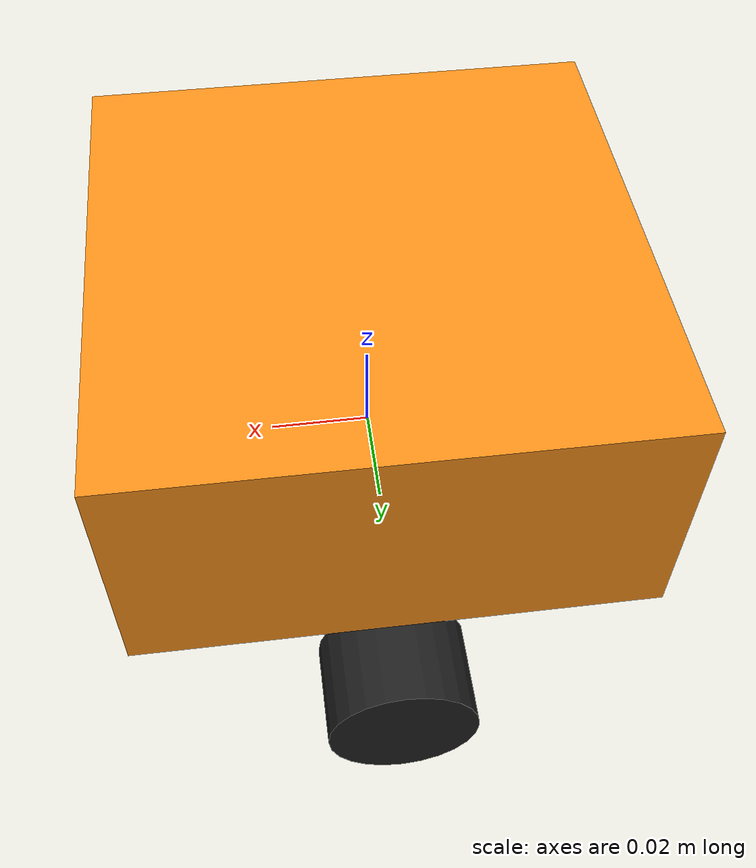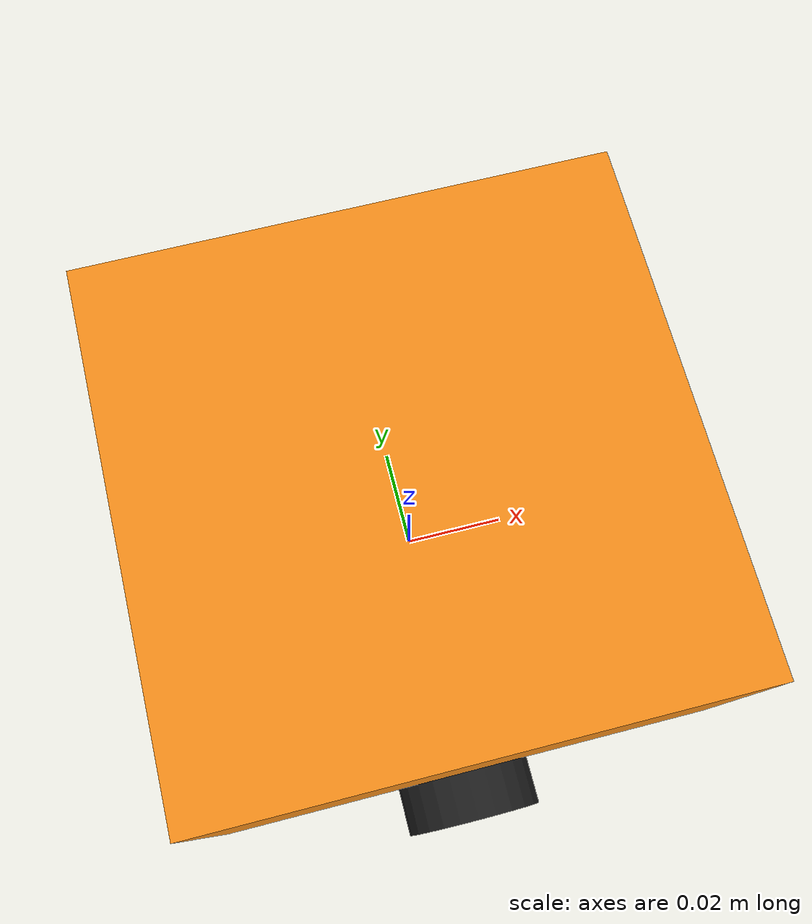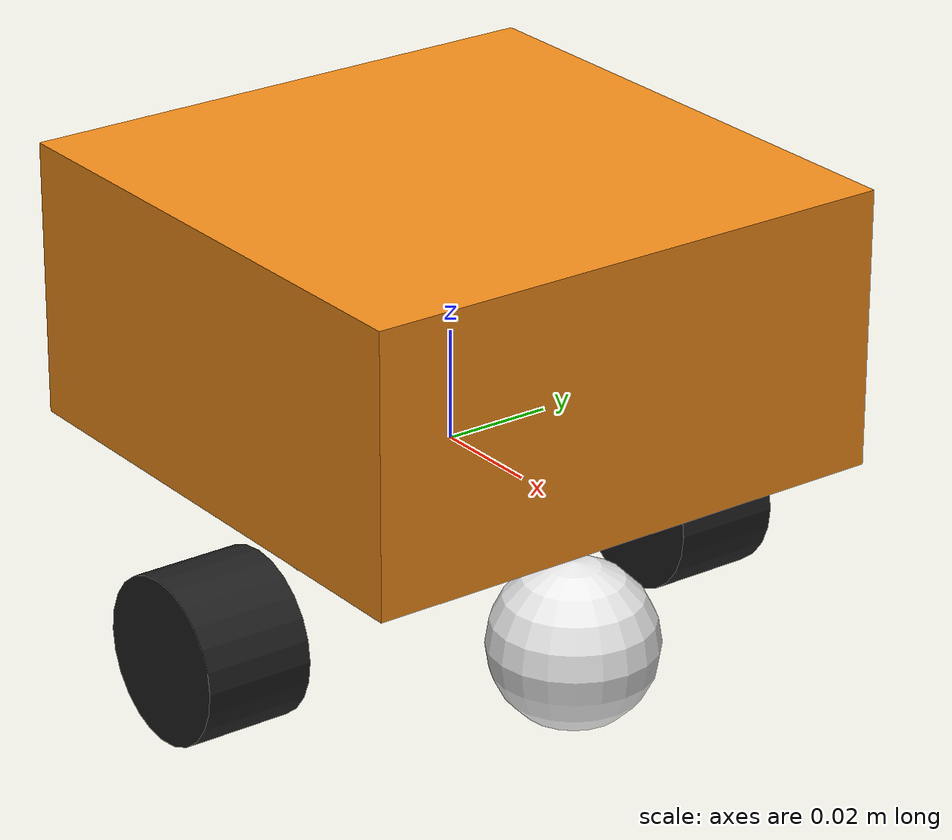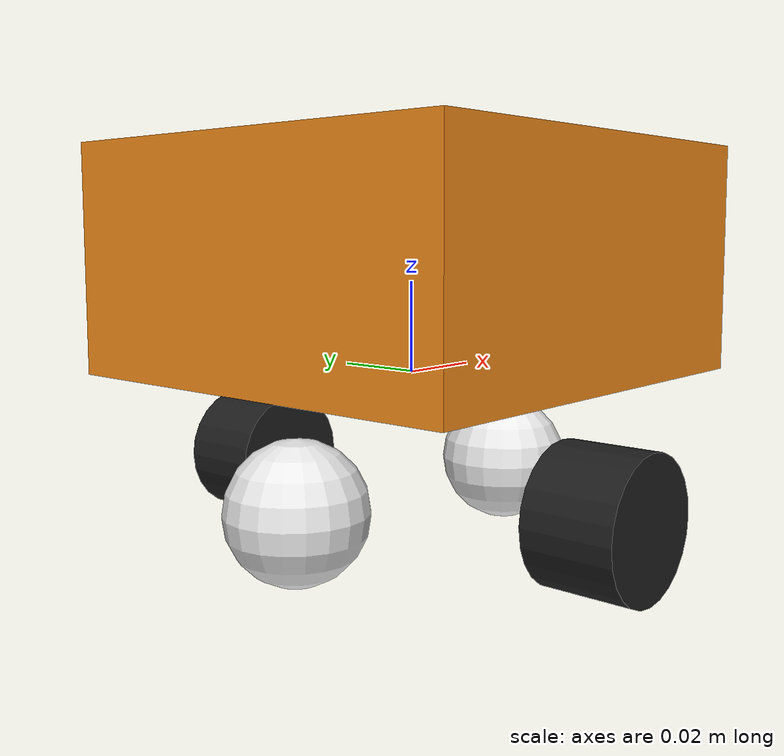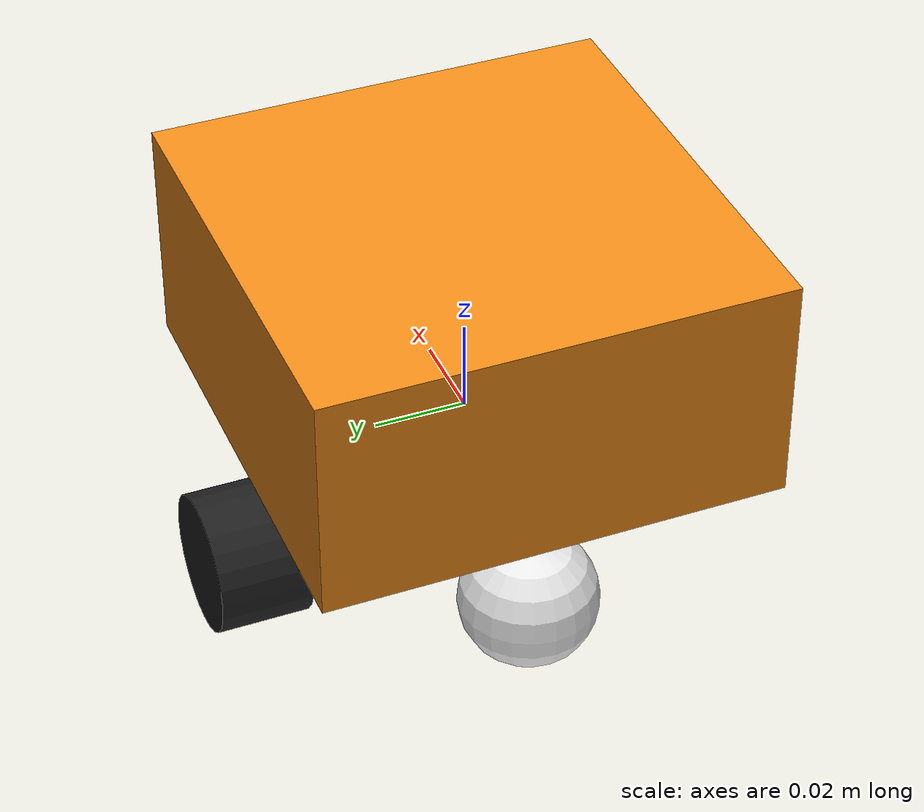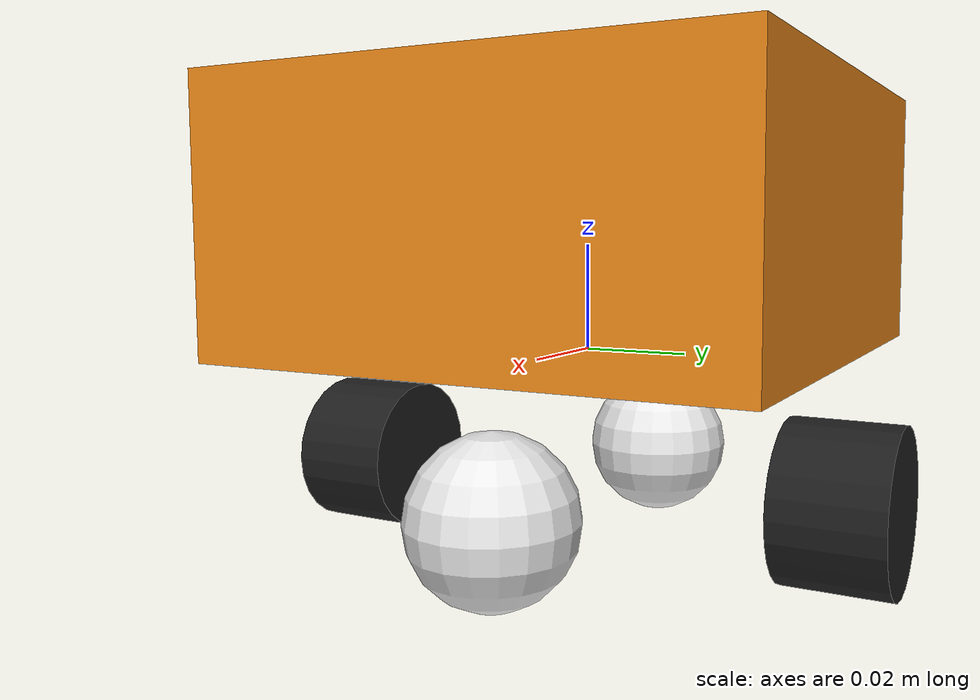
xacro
<?xml version="1.0"?>
<!-- Basic differential drive mobile base -->
<robot xmlns:xacro="http://www.ros.org/wiki/xacro" name="diffdrive_robot">
  <xacro:arg name="prefix" default="" />
  <xacro:arg name="use_mock_hardware" default="false" />

  <xacro:include filename="$(find water_bot_description)/diffbot/urdf/diffbot_description.urdf.xacro" />

  <!-- Import Rviz colors -->
  <xacro:include filename="$(find water_bot_description)/diffbot/urdf/diffbot.materials.xacro" />

  <!-- Import diffbot ros2_control description -->
  <xacro:include filename="$(find water_bot_control)/ros2_control/diffbot.ros2_control.xacro" />

  <xacro:diffbot prefix="$(arg prefix)" />

  <xacro:diffbot_ros2_control
    name="DiffBot" prefix="$(arg prefix)" use_mock_hardware="$(arg use_mock_hardware)"/>

</robot>

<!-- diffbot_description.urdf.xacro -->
<robot xmlns:xacro="http://www.ros.org/wiki/xacro">

  <xacro:macro name="diffbot" params="prefix">

  <!-- Constants for robot dimensions -->
  <xacro:property name="PI" value="3.1415926535897931"/>
  <xacro:property name="base_mass" value="0.3" /> <!-- arbitrary value for base mass -->
  <xacro:property name="base_width" value="0.1" />
  <xacro:property name="base_length" value="0.1" />
  <xacro:property name="base_height" value="0.05" />
  <xacro:property name="wheel_mass" value="0.3" /> <!-- arbitrary value for wheel mass -->
  <xacro:property name="wheel_len" value="0.020" />
  <xacro:property name="wheel_radius" value="0.015" />
  <xacro:property name="caster_wheel_mass" value="0.1" /> <!-- arbitrary value for caster wheel mass -->
  <xacro:property name="caster_wheel_radius" value="0.015" />
  <xacro:property name="lidar_mass" value="0.05" /> <!-- arbitrary value for lidar mass -->
  <xacro:property name="lidar_radius" value="0.025" />
  <xacro:property name="lidar_height" value="0.02" />
  <xacro:property name="z_offset" value="-${base_height/2}" /> <!-- Space btw top of beam and the each joint -->

  <!-- Base Link -->
  <link name="${prefix}base_link">
    <collision>
      <origin xyz="0 0 0" rpy="0 0 0"/>
      <geometry>
        <box size="${base_width} ${base_length} ${base_height}"/>
      </geometry>
    </collision>

    <visual>
      <origin xyz="0 0 ${base_height/2}" rpy="0 0 0"/>
      <geometry>
        <box size="${base_width} ${base_length} ${base_height}"/>
      </geometry>
      <material name="orange"/>
    </visual>

    <inertial>
      <origin xyz="0 0 0" rpy="0 0 0"/>
      <mass value="${base_mass}"/>
      <inertia
        ixx="${base_mass / 12.0 * (base_length*base_length + base_height*base_height)}" ixy="0.0" ixz="0.0"
        iyy="${base_mass / 12.0 * (base_height*base_height + base_width*base_width)}" iyz="0.0"
        izz="${base_mass / 12.0 * (base_width*base_width + base_length*base_length)}"/>
      </inertial>
    </link>

    <joint name="${prefix}left_wheel_joint" type="continuous">
      <parent link="${prefix}base_link"/>
      <child link="${prefix}left_wheel"/>
      <origin xyz="0 -${base_width/2} ${z_offset}" rpy="0 0 0"/>
      <axis xyz="0 1 0"/>
      <dynamics damping="0.2"/>
      <limit effort="100" velocity="1.0"/>
    </joint>

    <!-- left wheel Link -->
    <link name="${prefix}left_wheel">
      <collision>
        <origin xyz="0 0 0" rpy="${PI/2} 0 0"/>
        <geometry>
          <cylinder length="${wheel_len}" radius="${wheel_radius}"/>
        </geometry>
      </collision>

      <visual>
        <origin xyz="0 0 0" rpy="${PI/2} 0 0"/>
        <geometry>
          <cylinder length="${wheel_len}" radius="${wheel_radius}"/>
        </geometry>
        <material name="black"/>
      </visual>

      <inertial>
        <origin xyz="0 0 0" rpy="${PI/2} 0 0"/>
        <mass value="${wheel_mass}"/>
        <inertia
          ixx="${wheel_mass / 12.0 * (3*wheel_radius*wheel_radius + wheel_len*wheel_len)}" ixy="0.0" ixz="0.0"
          iyy="${wheel_mass / 12.0 * (3*wheel_radius*wheel_radius + wheel_len*wheel_len)}" iyz="0.0"
          izz="${wheel_mass / 2.0 * wheel_radius*wheel_radius}"/>
        </inertial>
      </link>

    <joint name="${prefix}right_wheel_joint" type="continuous">
      <parent link="${prefix}base_link"/>
      <child link="${prefix}right_wheel"/>
      <origin xyz="0 ${base_width/2} ${z_offset}" rpy="0 0 0"/>
      <axis xyz="0 1 0"/>
      <dynamics damping="0.2"/>
      <limit effort="100" velocity="1.0"/>
    </joint>

    <!-- right wheel Link -->
    <link name="${prefix}right_wheel">
      <collision>
        <origin xyz="0 0 0" rpy="${PI/2} 0 0"/>
        <geometry>
          <cylinder length="${wheel_len}" radius="${wheel_radius}"/>
        </geometry>
      </collision>

      <visual>
        <origin xyz="0 0 0" rpy="${PI/2} 0 0"/>
        <geometry>
          <cylinder length="${wheel_len}" radius="${wheel_radius}"/>
        </geometry>
        <material name="black"/>
      </visual>

      <inertial>
        <origin xyz="0 0 0" rpy="${PI/2} 0 0"/>
        <mass value="${wheel_mass}"/>
        <inertia
          ixx="${wheel_mass / 12.0 * (3*wheel_radius*wheel_radius + wheel_len*wheel_len)}" ixy="0.0" ixz="0.0"
          iyy="${wheel_mass / 12.0 * (3*wheel_radius*wheel_radius + wheel_len*wheel_len)}" iyz="0.0"
          izz="${wheel_mass / 2.0 * wheel_radius*wheel_radius}"/>
        </inertial>
      </link>

    <joint name="${prefix}caster_frontal_wheel_joint" type="fixed">
      <parent link="${prefix}base_link"/>
      <child link="${prefix}caster_frontal_wheel"/>
      <origin xyz="${base_width/2 - caster_wheel_radius} 0 ${z_offset}" rpy="0 0 0"/>
    </joint>

    <!-- caster frontal wheel Link -->
    <link name="${prefix}caster_frontal_wheel">
      <collision>
        <origin xyz="0 0 0" rpy="0 0 0"/>
        <geometry>
          <sphere radius="${caster_wheel_radius}"/>
        </geometry>
      </collision>

      <visual>
        <origin xyz="0 0 0" rpy="0 0 0"/>
        <geometry>
          <sphere radius="${caster_wheel_radius}"/>
        </geometry>
        <material name="white"/>
      </visual>

      <inertial>
        <origin xyz="0 0 0" rpy="0 0 0"/>
        <mass value="${caster_wheel_mass}"/>
        <inertia
          ixx="${caster_wheel_mass * 0.4 * (caster_wheel_radius * caster_wheel_radius)}" ixy="0.0" ixz="0.0"
          iyy="${caster_wheel_mass * 0.4 * (caster_wheel_radius * caster_wheel_radius)}" iyz="0.0"
          izz="${caster_wheel_mass * 0.4 * (caster_wheel_radius * caster_wheel_radius)}"/>
        </inertial>
      </link>

    <joint name="${prefix}caster_rear_wheel_joint" type="fixed">
      <parent link="${prefix}base_link"/>
      <child link="${prefix}caster_rear_wheel"/>
      <origin xyz="${-base_width/2 + caster_wheel_radius} 0 ${z_offset}" rpy="0 0 0"/>
    </joint>

    <!-- caster rear wheel Link -->
    <link name="${prefix}caster_rear_wheel">
      <collision>
        <origin xyz="0 0 0" rpy="0 0 0"/>
        <geometry>
          <sphere radius="${caster_wheel_radius}"/>
        </geometry>
      </collision>

      <visual>
        <origin xyz="0 0 0" rpy="0 0 0"/>
        <geometry>
          <sphere radius="${caster_wheel_radius}"/>
        </geometry>
        <material name="white"/>
      </visual>

      <inertial>
        <origin xyz="0 0 0" rpy="0 0 0"/>
        <mass value="${caster_wheel_mass}"/>
        <inertia
          ixx="${caster_wheel_mass * 0.4 * (caster_wheel_radius * caster_wheel_radius)}" ixy="0.0" ixz="0.0"
          iyy="${caster_wheel_mass * 0.4 * (caster_wheel_radius * caster_wheel_radius)}" iyz="0.0"
          izz="${caster_wheel_mass * 0.4 * (caster_wheel_radius * caster_wheel_radius)}"/>
        </inertial>
      </link>

    <joint name="${prefix}laser" type="fixed">
      <parent link="${prefix}base_link"/>
      <child link="${prefix}lidar_link"/>
      <origin xyz="0 0 ${base_height/2 + lidar_height/2}" rpy="0 0 0"/>
    </joint>

    <!-- lidar Link -->
    <link name="${prefix}lidar_link">
      <collision>
        <origin xyz="0 0 0" rpy="0 0 0"/>
        <geometry>
          <cylinder length="${lidar_height}" radius="${lidar_radius}"/>
        </geometry>
      </collision>

      <visual>
        <origin xyz="0 0 0" rpy="0 0 0"/>
        <geometry>
          <cylinder length="${lidar_height}" radius="${lidar_radius}"/>
        </geometry>
        <material name="blue"/>
      </visual>

      <inertial>
        <origin xyz="0 0 0" rpy="0 0 0"/>
        <mass value="${lidar_mass}"/>
        <inertia
          ixx="${lidar_mass / 12.0 * (3*lidar_radius*lidar_radius + lidar_height*lidar_height)}" ixy="0.0" ixz="0.0"
          iyy="${lidar_mass / 12.0 * (3*lidar_radius*lidar_radius + lidar_height*lidar_height)}" iyz="0.0"
          izz="${lidar_mass / 2.0 * lidar_radius*lidar_radius}"/>
        </inertial>
      </link>

  </xacro:macro>

</robot>
